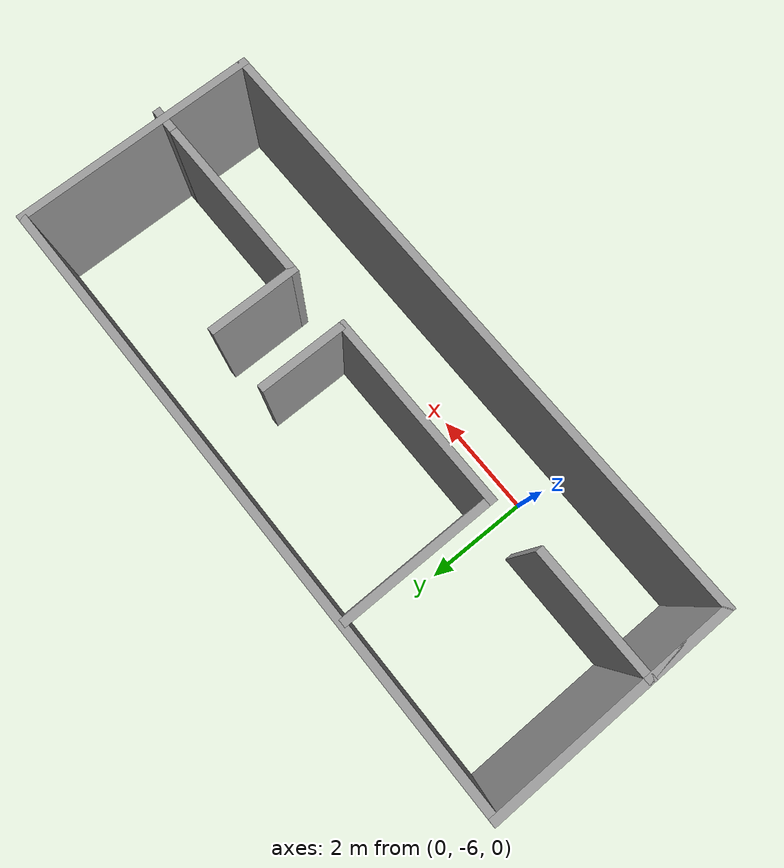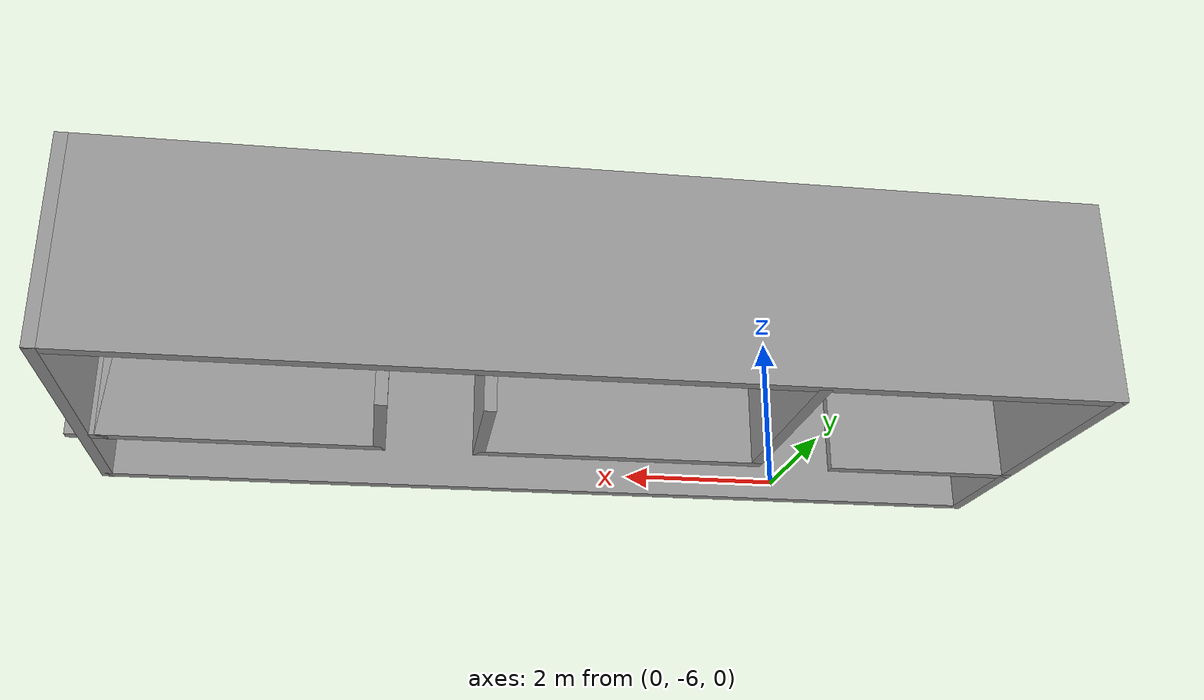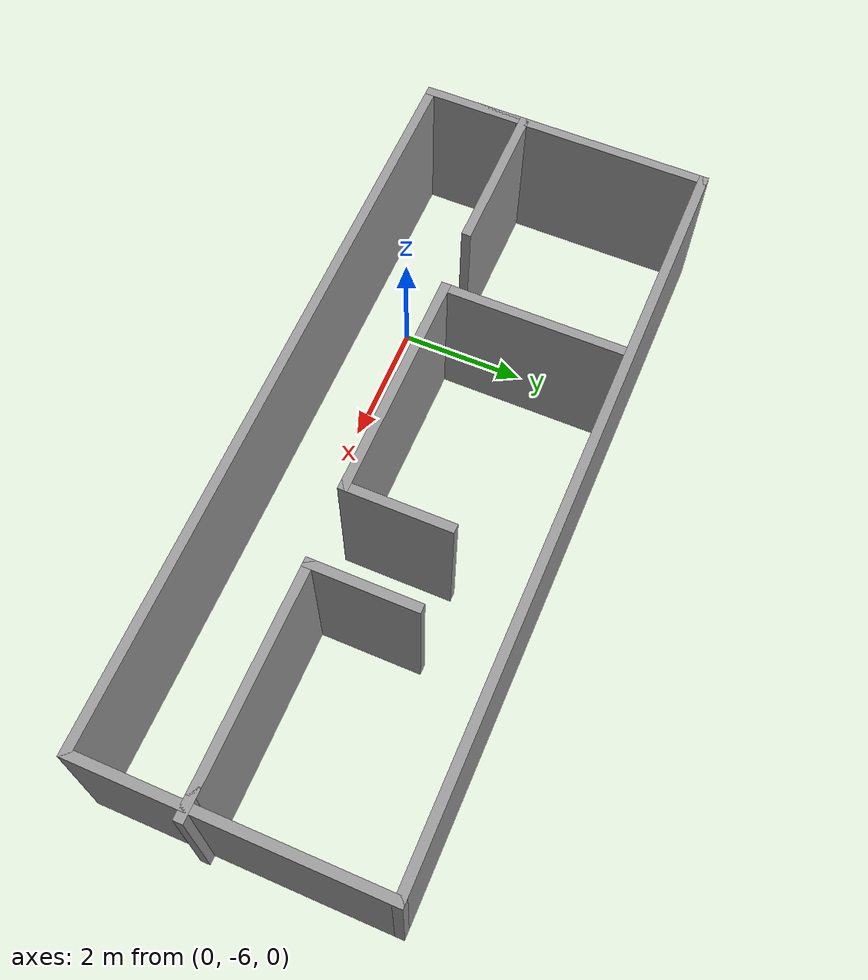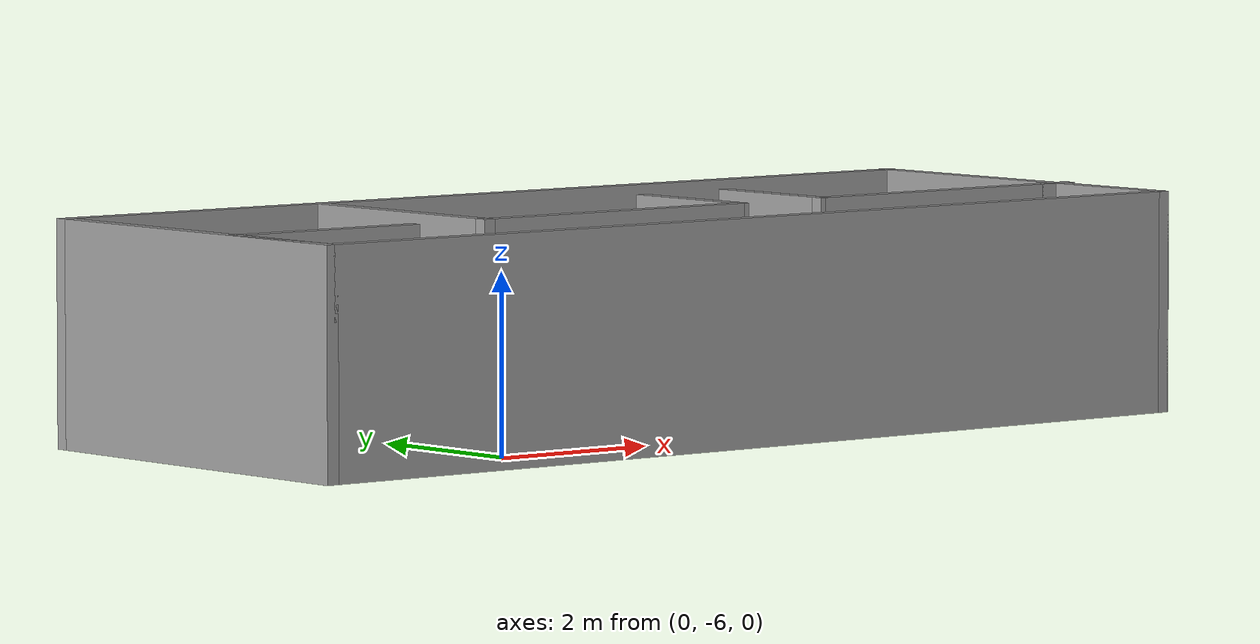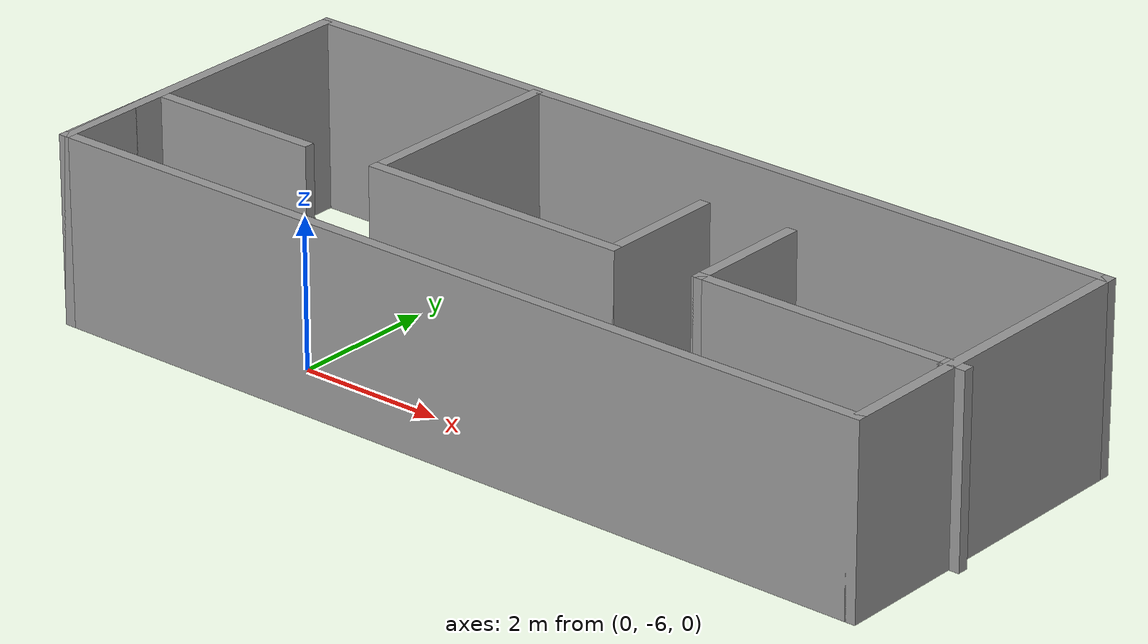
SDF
<?xml version='1.0'?>
<sdf version='1.7'>
  <model name='labver2'>
    <pose>2.985 -3.4675 0 0 -0 0</pose>
    <link name='Wall_0'>
      <collision name='Wall_0_Collision'>
        <geometry>
          <box>
            <size>12 0.15 2.5</size>
          </box>
        </geometry>
        <pose>0 0 1.25 0 -0 0</pose>
      </collision>
      <visual name='Wall_0_Visual'>
        <pose>0 0 1.25 0 -0 0</pose>
        <geometry>
          <box>
            <size>12 0.15 2.5</size>
          </box>
        </geometry>
        <material>
          <script>
            <uri>file://media/materials/scripts/gazebo.material</uri>
            <name>Gazebo/Grey</name>
          </script>
          <ambient>1 1 1 1</ambient>
        </material>
        <meta>
          <layer>0</layer>
        </meta>
      </visual>
      <pose>-0.07 -3.3925 0 0 -0 0</pose>
    </link>
    <link name='Wall_1'>
      <collision name='Wall_1_Collision'>
        <geometry>
          <box>
            <size>4.75 0.15 2.5</size>
          </box>
        </geometry>
        <pose>0 0 1.25 0 -0 0</pose>
      </collision>
      <visual name='Wall_1_Visual'>
        <pose>0 0 1.25 0 -0 0</pose>
        <geometry>
          <box>
            <size>4.75 0.15 2.5</size>
          </box>
        </geometry>
        <material>
          <script>
            <uri>file://media/materials/scripts/gazebo.material</uri>
            <name>Gazebo/Grey</name>
          </script>
          <ambient>1 1 1 1</ambient>
        </material>
        <meta>
          <layer>0</layer>
        </meta>
      </visual>
      <pose>5.855 -1.0925 0 0 -0 1.5708</pose>
    </link>
    <link name='Wall_11'>
      <collision name='Wall_11_Collision'>
        <geometry>
          <box>
            <size>0.15 0.15 2.5</size>
          </box>
        </geometry>
        <pose>0 0 1.25 0 -0 0</pose>
      </collision>
      <visual name='Wall_11_Visual'>
        <pose>0 0 1.25 0 -0 0</pose>
        <geometry>
          <box>
            <size>0.15 0.15 2.5</size>
          </box>
        </geometry>
        <material>
          <script>
            <uri>file://media/materials/scripts/gazebo.material</uri>
            <name>Gazebo/Grey</name>
          </script>
          <ambient>1 1 1 1</ambient>
        </material>
        <meta>
          <layer>0</layer>
        </meta>
      </visual>
      <pose>5.645 -1.6825 0 0 -0 0</pose>
    </link>
    <link name='Wall_14'>
      <collision name='Wall_14_Collision'>
        <geometry>
          <box>
            <size>3 0.15 2.5</size>
          </box>
        </geometry>
        <pose>0 0 1.25 0 -0 0</pose>
      </collision>
      <visual name='Wall_14_Visual'>
        <pose>0 0 1.25 0 -0 0</pose>
        <geometry>
          <box>
            <size>3 0.15 2.5</size>
          </box>
        </geometry>
        <material>
          <script>
            <uri>file://media/materials/scripts/gazebo.material</uri>
            <name>Gazebo/Grey</name>
          </script>
          <ambient>1 1 1 1</ambient>
        </material>
        <meta>
          <layer>0</layer>
        </meta>
      </visual>
      <pose>-2.555 -0.2975 0 0 -0 1.5708</pose>
    </link>
    <link name='Wall_16'>
      <collision name='Wall_16_Collision'>
        <geometry>
          <box>
            <size>1.75 0.15 2.5</size>
          </box>
        </geometry>
        <pose>0 0 1.25 0 -0 0</pose>
      </collision>
      <visual name='Wall_16_Visual'>
        <pose>0 0 1.25 0 -0 0</pose>
        <geometry>
          <box>
            <size>1.75 0.15 2.5</size>
          </box>
        </geometry>
        <material>
          <script>
            <uri>file://media/materials/scripts/gazebo.material</uri>
            <name>Gazebo/Grey</name>
          </script>
          <ambient>1 1 1 1</ambient>
        </material>
        <meta>
          <layer>0</layer>
        </meta>
      </visual>
      <pose>1.045 -0.9225 0 0 -0 1.5708</pose>
    </link>
    <link name='Wall_18'>
      <collision name='Wall_18_Collision'>
        <geometry>
          <box>
            <size>1.75 0.15 2.5</size>
          </box>
        </geometry>
        <pose>0 0 1.25 0 -0 0</pose>
      </collision>
      <visual name='Wall_18_Visual'>
        <pose>0 0 1.25 0 -0 0</pose>
        <geometry>
          <box>
            <size>1.75 0.15 2.5</size>
          </box>
        </geometry>
        <material>
          <script>
            <uri>file://media/materials/scripts/gazebo.material</uri>
            <name>Gazebo/Grey</name>
          </script>
          <ambient>1 1 1 1</ambient>
        </material>
        <meta>
          <layer>0</layer>
        </meta>
      </visual>
      <pose>2.295 -0.8825 0 0 -0 1.5708</pose>
    </link>
    <link name='Wall_2'>
      <collision name='Wall_2_Collision'>
        <geometry>
          <box>
            <size>12 0.15 2.5</size>
          </box>
        </geometry>
        <pose>0 0 1.25 0 -0 0</pose>
      </collision>
      <visual name='Wall_2_Visual'>
        <pose>0 0 1.25 0 -0 0</pose>
        <geometry>
          <box>
            <size>12 0.15 2.5</size>
          </box>
        </geometry>
        <material>
          <script>
            <uri>file://media/materials/scripts/gazebo.material</uri>
            <name>Gazebo/Grey</name>
          </script>
          <ambient>1 1 1 1</ambient>
        </material>
        <meta>
          <layer>0</layer>
        </meta>
      </visual>
      <pose>-0.07 1.2075 0 0 -0 3.14159</pose>
    </link>
    <link name='Wall_20'>
      <collision name='Wall_20_Collision'>
        <geometry>
          <box>
            <size>0.5 0.15 2.5</size>
          </box>
        </geometry>
        <pose>0 0 1.25 0 -0 0</pose>
      </collision>
      <visual name='Wall_20_Visual'>
        <pose>0 0 1.25 0 -0 0</pose>
        <geometry>
          <box>
            <size>0.5 0.15 2.5</size>
          </box>
        </geometry>
        <material>
          <script>
            <uri>file://media/materials/scripts/gazebo.material</uri>
            <name>Gazebo/Grey</name>
          </script>
          <ambient>1 1 1 1</ambient>
        </material>
        <meta>
          <layer>0</layer>
        </meta>
      </visual>
      <pose>5.82 -1.6825 0 0 -0 0</pose>
    </link>
    <link name='Wall_3'>
      <collision name='Wall_3_Collision'>
        <geometry>
          <box>
            <size>4.75 0.15 2.5</size>
          </box>
        </geometry>
        <pose>0 0 1.25 0 -0 0</pose>
      </collision>
      <visual name='Wall_3_Visual'>
        <pose>0 0 1.25 0 -0 0</pose>
        <geometry>
          <box>
            <size>4.75 0.15 2.5</size>
          </box>
        </geometry>
        <material>
          <script>
            <uri>file://media/materials/scripts/gazebo.material</uri>
            <name>Gazebo/Grey</name>
          </script>
          <ambient>1 1 1 1</ambient>
        </material>
        <meta>
          <layer>0</layer>
        </meta>
      </visual>
      <pose>-5.995 -1.0925 0 0 -0 -1.5708</pose>
    </link>
    <link name='Wall_4'>
      <collision name='Wall_4_Collision'>
        <geometry>
          <box>
            <size>1.75 0.15 2.5</size>
          </box>
        </geometry>
        <pose>0 0 1.25 0 -0 0</pose>
      </collision>
      <visual name='Wall_4_Visual'>
        <pose>0 0 1.25 0 -0 0</pose>
        <geometry>
          <box>
            <size>1.75 0.15 2.5</size>
          </box>
        </geometry>
        <material>
          <script>
            <uri>file://media/materials/scripts/gazebo.material</uri>
            <name>Gazebo/Grey</name>
          </script>
          <ambient>1 1 1 1</ambient>
        </material>
        <meta>
          <layer>0</layer>
        </meta>
      </visual>
      <pose>-5.995 -2.5925 0 0 -0 1.5708</pose>
    </link>
    <link name='Wall_5'>
      <collision name='Wall_5_Collision'>
        <geometry>
          <box>
            <size>2.5 0.15 2.5</size>
          </box>
        </geometry>
        <pose>0 0 1.25 0 -0 0</pose>
      </collision>
      <visual name='Wall_5_Visual'>
        <pose>0 0 1.25 0 -0 0</pose>
        <geometry>
          <box>
            <size>2.5 0.15 2.5</size>
          </box>
        </geometry>
        <material>
          <script>
            <uri>file://media/materials/scripts/gazebo.material</uri>
            <name>Gazebo/Grey</name>
          </script>
          <ambient>1 1 1 1</ambient>
        </material>
        <meta>
          <layer>0</layer>
        </meta>
      </visual>
      <pose>-4.82 -1.7925 0 0 -0 0</pose>
    </link>
    <link name='Wall_7'>
      <collision name='Wall_7_Collision'>
        <geometry>
          <box>
            <size>3.75 0.15 2.5</size>
          </box>
        </geometry>
        <pose>0 0 1.25 0 -0 0</pose>
      </collision>
      <visual name='Wall_7_Visual'>
        <pose>0 0 1.25 0 -0 0</pose>
        <geometry>
          <box>
            <size>3.75 0.15 2.5</size>
          </box>
        </geometry>
        <material>
          <script>
            <uri>file://media/materials/scripts/gazebo.material</uri>
            <name>Gazebo/Grey</name>
          </script>
          <ambient>1 1 1 1</ambient>
        </material>
        <meta>
          <layer>0</layer>
        </meta>
      </visual>
      <pose>-0.755 -1.7225 0 0 -0 0</pose>
    </link>
    <link name='Wall_9'>
      <collision name='Wall_9_Collision'>
        <geometry>
          <box>
            <size>3.5 0.15 2.5</size>
          </box>
        </geometry>
        <pose>0 0 1.25 0 -0 0</pose>
      </collision>
      <visual name='Wall_9_Visual'>
        <pose>0 0 1.25 0 -0 0</pose>
        <geometry>
          <box>
            <size>3.5 0.15 2.5</size>
          </box>
        </geometry>
        <material>
          <script>
            <uri>file://media/materials/scripts/gazebo.material</uri>
            <name>Gazebo/Grey</name>
          </script>
          <ambient>1 1 1 1</ambient>
        </material>
        <meta>
          <layer>0</layer>
        </meta>
      </visual>
      <pose>3.97 -1.6825 0 0 -0 0</pose>
    </link>
    <static>1</static>
  </model>
</sdf>
